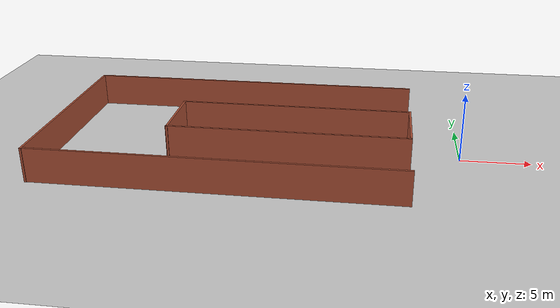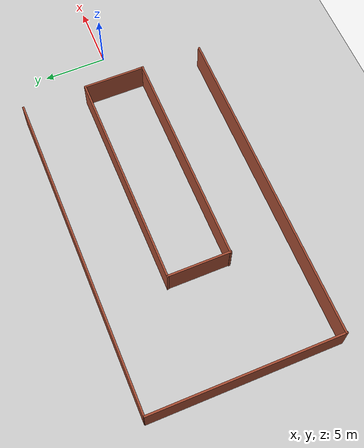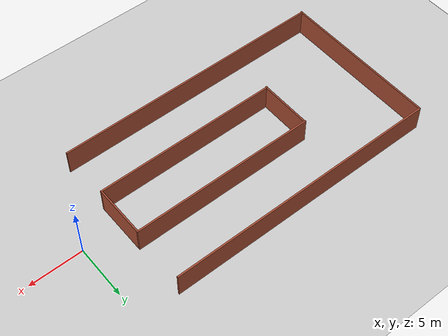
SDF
<sdf version="1.7">
 <world name="default">
  <light name="sun" type="directional">
   <pose>0 0 10 0 -0 0</pose>
   <diffuse>0.8 0.8 0.8 1</diffuse>
   <specular>0.2 0.2 0.2 1</specular>
   <attenuation>
    <range>1000</range>
    <constant>0.9</constant>
    <linear>0.01</linear>
    <quadratic>0.001</quadratic>
   </attenuation>
   <direction>-0.5 0.1 -0.9</direction>
   <spot><inner_angle>0</inner_angle><outer_angle>0</outer_angle><falloff>0</falloff></spot>
  </light>
  <model name="ground_plane">
   <static>1</static>
   <link name="link">
    <collision name="collision">
     <geometry><plane><normal>0 0 1</normal><size>100 100</size></plane></geometry>
     <surface>
      <contact><collide_bitmask>65535</collide_bitmask></contact>
      <friction><ode><mu>100</mu><mu2>50</mu2></ode></friction>
     </surface>
    </collision>
    <visual name="visual">
     <cast_shadows>0</cast_shadows>
     <geometry><plane><normal>0 0 1</normal><size>100 100</size></plane></geometry>
     <material>
      <script><uri>file://media/materials/scripts/gazebo.material</uri><name>Gazebo/Grey</name></script>
     </material>
    </visual>
   </link>
  </model>
  <gravity>0 0 -9.8</gravity>
  <magnetic_field>6e-06 2.3e-05 -4.2e-05</magnetic_field>
  <atmosphere type="adiabatic"/>
  <physics type="ode">
   <max_step_size>0.001</max_step_size>
   <real_time_factor>1</real_time_factor>
   <real_time_update_rate>1000</real_time_update_rate>
  </physics>
  <scene><ambient>0.4 0.4 0.4 1</ambient><background>0.7 0.7 0.7 1</background><shadows>1</shadows></scene>
  <audio><device>default</device></audio>
  <spherical_coordinates>
   <surface_model>EARTH_WGS84</surface_model>
   <latitude_deg>0</latitude_deg>
   <longitude_deg>0</longitude_deg>
   <elevation>0</elevation>
   <heading_deg>0</heading_deg>
  </spherical_coordinates>
  <model name="U_shape.world">
   <pose>-14.6331 0.304772 0 0 -0 0</pose>
   <link name="Wall_11">
    <collision name="Wall_11_Collision">
     <geometry><box><size>25.7207 0.15 2.5</size></box></geometry>
     <pose>0 0 1.25 0 -0 0</pose>
    </collision>
    <visual name="Wall_11_Visual">
     <pose>0 0 1.25 0 -0 0</pose>
     <geometry><box><size>25.7207 0.15 2.5</size></box></geometry>
     <material>
      <script><uri>file://media/materials/scripts/gazebo.material</uri><name>Gazebo/Bricks</name></script>
      <ambient>1 1 1 1</ambient>
     </material>
     <meta><layer>0</layer></meta>
    </visual>
    <pose>-1.73227 7.44523 0 0 -0 0</pose>
   </link>
   <link name="Wall_37">
    <collision name="Wall_37_Collision">
     <geometry><box><size>17.3452 0.15 2.5</size></box></geometry>
     <pose>0 0 1.25 0 -0 0</pose>
    </collision>
    <visual name="Wall_37_Visual">
     <pose>0 0 1.25 0 -0 0</pose>
     <geometry><box><size>17.3452 0.15 2.5</size></box></geometry>
     <material>
      <script><uri>file://media/materials/scripts/gazebo.material</uri><name>Gazebo/Bricks</name></script>
      <ambient>1 1 1 1</ambient>
     </material>
     <meta><layer>0</layer></meta>
    </visual>
    <pose>2.45591 -2.50184 0 0 -0 3.14159</pose>
   </link>
   <link name="Wall_38">
    <collision name="Wall_38_Collision">
     <geometry><box><size>5 0.15 2.5</size></box></geometry>
     <pose>0 0 1.25 0 -0 0</pose>
    </collision>
    <visual name="Wall_38_Visual">
     <pose>0 0 1.25 0 -0 0</pose>
     <geometry><box><size>5 0.15 2.5</size></box></geometry>
     <material>
      <script><uri>file://media/materials/scripts/gazebo.material</uri><name>Gazebo/Bricks</name></script>
      <ambient>1 1 1 1</ambient>
     </material>
     <meta><layer>0</layer></meta>
    </visual>
    <pose>-6.10125 -0.117299 0 0 -0 1.5708</pose>
   </link>
   <link name="Wall_39">
    <collision name="Wall_39_Collision">
     <geometry><box><size>17.3452 0.15 2.5</size></box></geometry>
     <pose>0 0 1.25 0 -0 0</pose>
    </collision>
    <visual name="Wall_39_Visual">
     <pose>0 0 1.25 0 -0 0</pose>
     <geometry><box><size>17.3452 0.15 2.5</size></box></geometry>
     <material>
      <script><uri>file://media/materials/scripts/gazebo.material</uri><name>Gazebo/Bricks</name></script>
      <ambient>1 1 1 1</ambient>
     </material>
     <meta><layer>0</layer></meta>
    </visual>
    <pose>2.45591 2.34816 0 0 -0 0</pose>
   </link>
   <link name="Wall_4">
    <collision name="Wall_4_Collision">
     <geometry><box><size>25.7207 0.15 2.5</size></box></geometry>
     <pose>0 0 1.25 0 -0 0</pose>
    </collision>
    <visual name="Wall_4_Visual">
     <pose>0 0 1.25 0 -0 0</pose>
     <geometry><box><size>25.7207 0.15 2.5</size></box></geometry>
     <material>
      <script><uri>file://media/materials/scripts/gazebo.material</uri><name>Gazebo/Bricks</name></script>
      <ambient>1 1 1 1</ambient>
     </material>
     <meta><layer>0</layer></meta>
    </visual>
    <pose>-1.73227 -7.40477 0 0 -0 3.14159</pose>
   </link>
   <link name="Wall_40">
    <collision name="Wall_40_Collision">
     <geometry><box><size>5 0.15 2.5</size></box></geometry>
     <pose>0 0 1.25 0 -0 0</pose>
    </collision>
    <visual name="Wall_40_Visual">
     <pose>0 0 1.25 0 -0 0</pose>
     <geometry><box><size>5 0.15 2.5</size></box></geometry>
     <material>
      <script><uri>file://media/materials/scripts/gazebo.material</uri><name>Gazebo/Bricks</name></script>
      <ambient>1 1 1 1</ambient>
     </material>
     <meta><layer>0</layer></meta>
    </visual>
    <pose>11.0535 -0.076844 0 0 -0 -1.5708</pose>
   </link>
   <link name="Wall_6">
    <collision name="Wall_6_Collision">
     <geometry><box><size>15 0.15 2.5</size></box></geometry>
     <pose>0 0 1.25 0 -0 0</pose>
    </collision>
    <visual name="Wall_6_Visual">
     <pose>0 0 1.25 0 -0 0</pose>
     <geometry><box><size>15 0.15 2.5</size></box></geometry>
     <material>
      <script><uri>file://media/materials/scripts/gazebo.material</uri><name>Gazebo/Bricks</name></script>
      <ambient>1 1 1 1</ambient>
     </material>
     <meta><layer>0</layer></meta>
    </visual>
    <pose>-14.5581 -0.020227 0 0 -0 1.5708</pose>
   </link>
   <static>1</static>
  </model>
 </world>
</sdf>
